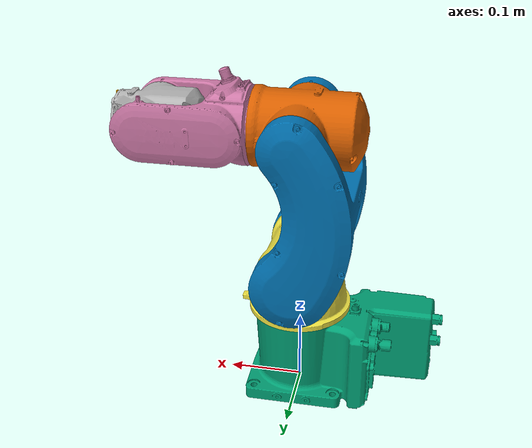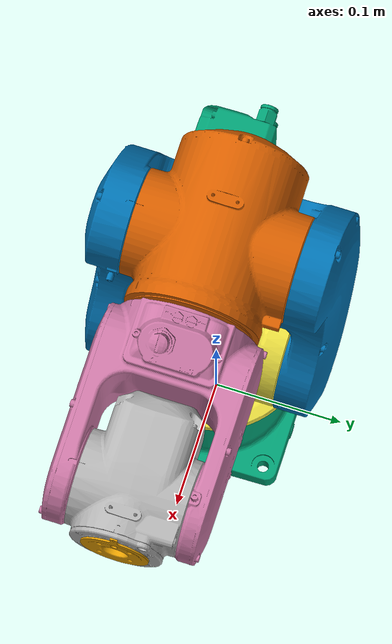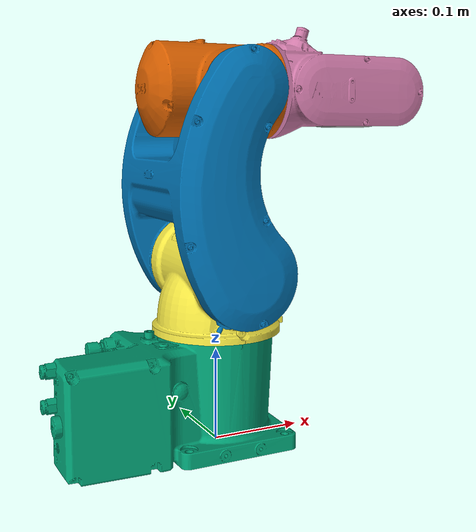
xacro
<?xml version="1.0"?>
<robot xmlns:xacro="http://ros.org/wiki/xacro" name="abb_irb1010">
    <xacro:include filename="$(find abb_irb1010_description)/urdf/common/insert_inertia.urdf.xacro"/>
    <xacro:include filename="$(find abb_irb1010_description)/urdf/abb_irb1010.urdf.xacro"/>
    <xacro:include filename="$(find abb_irb1010_description)/urdf/abb_irb1010_gazebo.urdf.xacro"/>
    <xacro:include filename="$(find abb_irb1010_description)/urdf/abb_irb1010_ros2_control.urdf.xacro"/>

    <xacro:insert_robot prefix=""/>
    <xacro:insert_ros2_control name="abb_irb1010_system"/>
</robot>

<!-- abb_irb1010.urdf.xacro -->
<robot xmlns:xacro="http://www.ros.org/wiki/xacro">
    <xacro:macro name="insert_robot" params="prefix">

        <link name="world"/>

        <link name="${prefix}base_footprint"/>

        <joint name="${prefix}world_fixed_joint" type="fixed">
            <parent link="world"/>
            <child link="${prefix}base_footprint"/>
            <origin xyz="0 0 0" rpy="0 0 0"/>
        </joint>

        <link name="${prefix}link1">
            <visual>
                <origin xyz="0 0 0" rpy="0 0 0"/>
                <geometry>
                    <mesh filename="package://abb_irb1010_description/meshes/visual/link1.dae" scale="1 1 1"/>
                </geometry>
            </visual>
            <collision>
                <origin xyz="0 0 0" rpy="0 0 0"/>
                <geometry>
                    <mesh filename="package://abb_irb1010_description/meshes/collision/link1.stl" scale="1 1 1"/>
                </geometry>
            </collision>
            <inertial>
                <origin xyz="-0.053 -0.004 0.061" rpy="0 0 0"/>
                <mass value="4.195558"/>
                <inertia ixx="0.010679" ixy="-0.001753" ixz="0.000503" iyy="0.023620" iyz="-0.000026" izz="0.024196"/>
            </inertial>
        </link>

        <joint name="${prefix}base_link_fixed_joint" type="fixed">
            <parent link="${prefix}base_footprint"/>
            <child link="${prefix}link1"/>
            <origin xyz="0 0 0" rpy="0 0 0"/>
        </joint>

        <link name="${prefix}link2">
            <visual>
                <origin xyz="0 0 0" rpy="0 0 0"/>
                <geometry>
                    <mesh filename="package://abb_irb1010_description/meshes/visual/link2.dae" scale="1 1 1"/>
                </geometry>
            </visual>
            <collision>
                <origin xyz="0 0 0" rpy="0 0 0"/>
                <geometry>
                    <mesh filename="package://abb_irb1010_description/meshes/collision/link2.stl" scale="1 1 1"/>
                </geometry>
            </collision>
            <inertial>
                <origin xyz="0.001 0.000 0.051" rpy="0 0 0"/>
                <mass value="1.759872"/>
                <inertia ixx="0.003933" ixy="0.000000" ixz="0.000049" iyy="0.003517" iyz="-0.000004" izz="0.003928"/>
            </inertial>
        </link>

        <joint name="${prefix}axis1" type="revolute">
            <parent link="${prefix}link1"/>
            <child link="${prefix}link2"/>
            <axis xyz="0 0 1"/>
            <origin xyz="0 0 0.123" rpy="0 0 0"/>
            <limit effort="1000" velocity="${320/pi}" lower="${-170*pi/180}" upper="${170*pi/180}"/>
        </joint>

        <link name="${prefix}link3">
            <visual>
                <origin xyz="0 0 0" rpy="0 0 0"/>
                <geometry>
                    <mesh filename="package://abb_irb1010_description/meshes/visual/link3.dae" scale="1 1 1"/>
                </geometry>
            </visual>
            <collision>
                <origin xyz="0 0 0" rpy="0 0 0"/>
                <geometry>
                    <mesh filename="package://abb_irb1010_description/meshes/collision/link3.stl" scale="1 1 1"/>
                </geometry>
            </collision>
            <inertial>
                <origin xyz="-0.008 0.000 0.082" rpy="0 0 0"/>
                <mass value="5.953403"/>
                <inertia ixx="0.045991" ixy="0.000076" ixz="0.000215" iyy="0.035907" iyz="0.000014" izz="0.022056"/>
            </inertial>
        </link>

        <joint name="${prefix}axis2" type="revolute">
            <parent link="${prefix}link2"/>
            <child link="${prefix}link3"/>
            <axis xyz="0 1 0"/>
            <origin xyz="0 0 0.067" rpy="0 0 0"/>
            <limit effort="100" velocity="${320/pi}" lower="${-75*pi/180}" upper="${125*pi/180}"/>
        </joint>

        <link name="${prefix}link4">
            <visual>
                <origin xyz="0 0 0" rpy="0 0 0"/>
                <geometry>
                    <mesh filename="package://abb_irb1010_description/meshes/visual/link4.dae" scale="1 1 1"/>
                </geometry>
            </visual>
            <collision>
                <origin xyz="0 0 0" rpy="0 0 0"/>
                <geometry>
                    <mesh filename="package://abb_irb1010_description/meshes/collision/link4.stl" scale="1 1 1"/>
                </geometry>
            </collision>
            <inertial>
                <origin xyz="-0.006 0.001 0.000" rpy="0 0 0"/>
                <mass value="1.533273"/>
                <inertia ixx="0.002486" ixy="0.000003" ixz="0.000007" iyy="0.003053" iyz="0.000016" izz="0.003540"/>
            </inertial>
        </link>

        <joint name="${prefix}axis3" type="revolute">
            <parent link="${prefix}link3"/>
            <child link="${prefix}link4"/>
            <axis xyz="0 1 0"/>
            <origin xyz="0 0 0.185" rpy="0 0 0"/>
            <limit effort="100" velocity="${375/pi}" lower="${-180*pi/180}" upper="${50*pi/180}"/>
        </joint>

        <link name="${prefix}link5">
            <visual>
                <origin xyz="0 0 0" rpy="0 0 0"/>
                <geometry>
                    <mesh filename="package://abb_irb1010_description/meshes/visual/link5.dae" scale="1 1 1"/>
                </geometry>
            </visual>
            <collision>
                <origin xyz="0 0 0" rpy="0 0 0"/>
                <geometry>
                    <mesh filename="package://abb_irb1010_description/meshes/collision/link5.stl" scale="1 1 1"/>
                </geometry>
            </collision>
            <inertial>
                <origin xyz="-0.004 -0.001 0.078" rpy="0 0 0"/>
                <mass value="1.853483"/>
                <inertia ixx="0.005550" ixy="-0.000011" ixz="-0.000063" iyy="0.004810" iyz="-0.000018" izz="0.003123"/>
            </inertial>
        </link>

        <joint name="${prefix}axis4" type="revolute">
            <parent link="${prefix}link4"/>
            <child link="${prefix}link5"/>
            <axis xyz="0 0 1"/>
            <origin xyz="0.0593 0 0" rpy="0 ${pi/2} 0"/>
            <limit effort="100" velocity="${500/pi}" lower="${-170*pi/180}" upper="${170*pi/180}"/>
        </joint>

        <link name="${prefix}link6">
            <visual>
                <origin xyz="0 0 0" rpy="0 0 0"/>
                <geometry>
                    <mesh filename="package://abb_irb1010_description/meshes/visual/link6.dae" scale="1 1 1"/>
                </geometry>
            </visual>
            <collision>
                <origin xyz="0 0 0" rpy="0 0 0"/>
                <geometry>
                    <mesh filename="package://abb_irb1010_description/meshes/collision/link6.stl" scale="1 1 1"/>
                </geometry>
            </collision>
            <inertial>
                <origin xyz="0.000 0.001 -0.010" rpy="0 0 0"/>
                <mass value="0.665474"/>
                <inertia ixx="0.000887" ixy="0.000003" ixz="0.000003" iyy="0.000845" iyz="0.000002" izz="0.000578"/>
            </inertial>
        </link>

        <joint name="${prefix}axis5" type="revolute">
            <parent link="${prefix}link5"/>
            <child link="${prefix}link6"/>
            <axis xyz="0 1 0"/>
            <origin xyz="0 0 0.1297" rpy="0 0 0"/>
            <limit effort="100" velocity="${470/pi}" lower="${-125*pi/180}" upper="${125*pi/180}"/>
        </joint>

        <link name="${prefix}link7">
            <visual>
                <origin xyz="0 0 0" rpy="0 0 0"/>
                <geometry>
                    <mesh filename="package://abb_irb1010_description/meshes/visual/link7.dae" scale="1 1 1"/>
                </geometry>
            </visual>
            <collision>
                <origin xyz="0 0 0" rpy="0 0 0"/>
                <geometry>
                    <mesh filename="package://abb_irb1010_description/meshes/collision/link7.stl" scale="1 1 1"/>
                </geometry>
            </collision>
            <inertial>
                <origin xyz="-0.001 0.000 0.011" rpy="0 0 0"/>
                <mass value="0.038936"/>
                <inertia ixx="0.000006" ixy="0.000000" ixz="0.000000" iyy="0.000007" iyz="0.000000" izz="0.000011"/>
            </inertial>
        </link>

        <joint name="${prefix}axis6" type="revolute">
            <parent link="${prefix}link6"/>
            <child link="${prefix}link7"/>
            <axis xyz="0 0 1"/>
            <origin xyz="0 0 0.0256" rpy="0 0 0"/>
            <limit effort="100" velocity="${500/pi}" lower="${-360*pi/180}" upper="${360*pi/180}"/>
        </joint>

        <link name="${prefix}tool"/>

        <joint name="${prefix}tool_fixed_joint" type="fixed">
            <parent link="${prefix}link7"/>
            <child link="${prefix}tool"/>
            <origin xyz="0 0 0.0194" rpy="0 0 0"/>
        </joint>
    </xacro:macro>
</robot>
